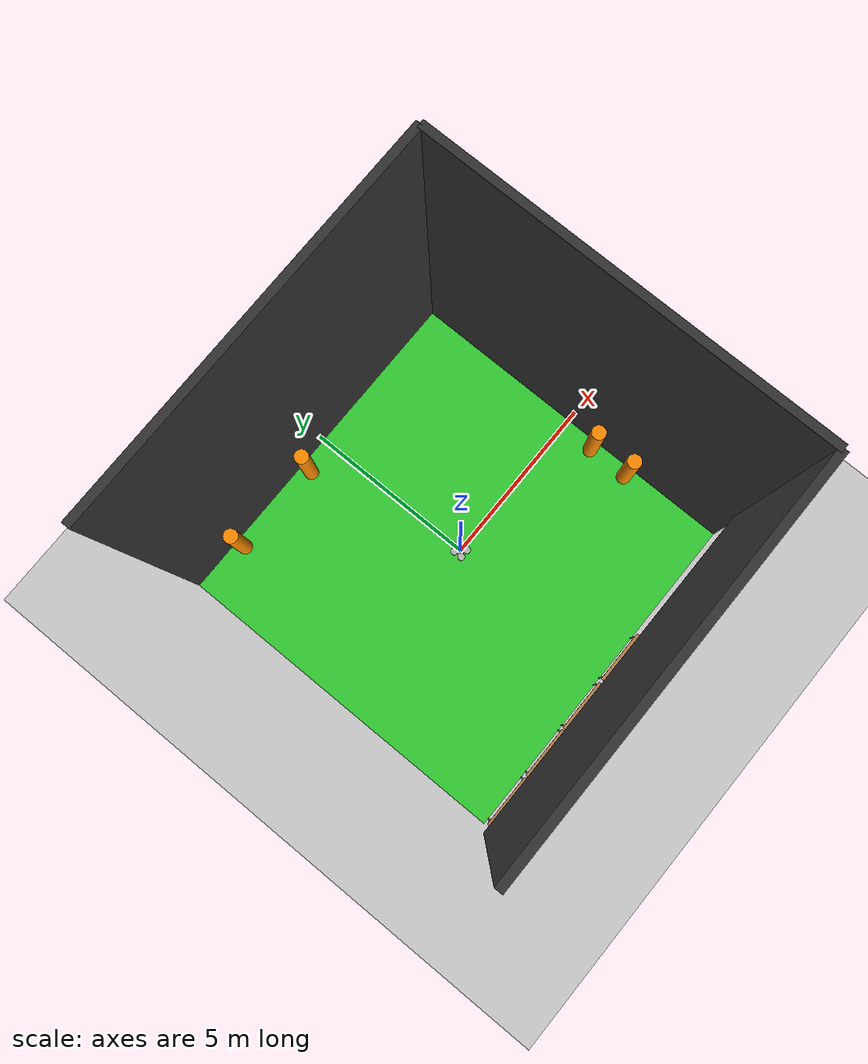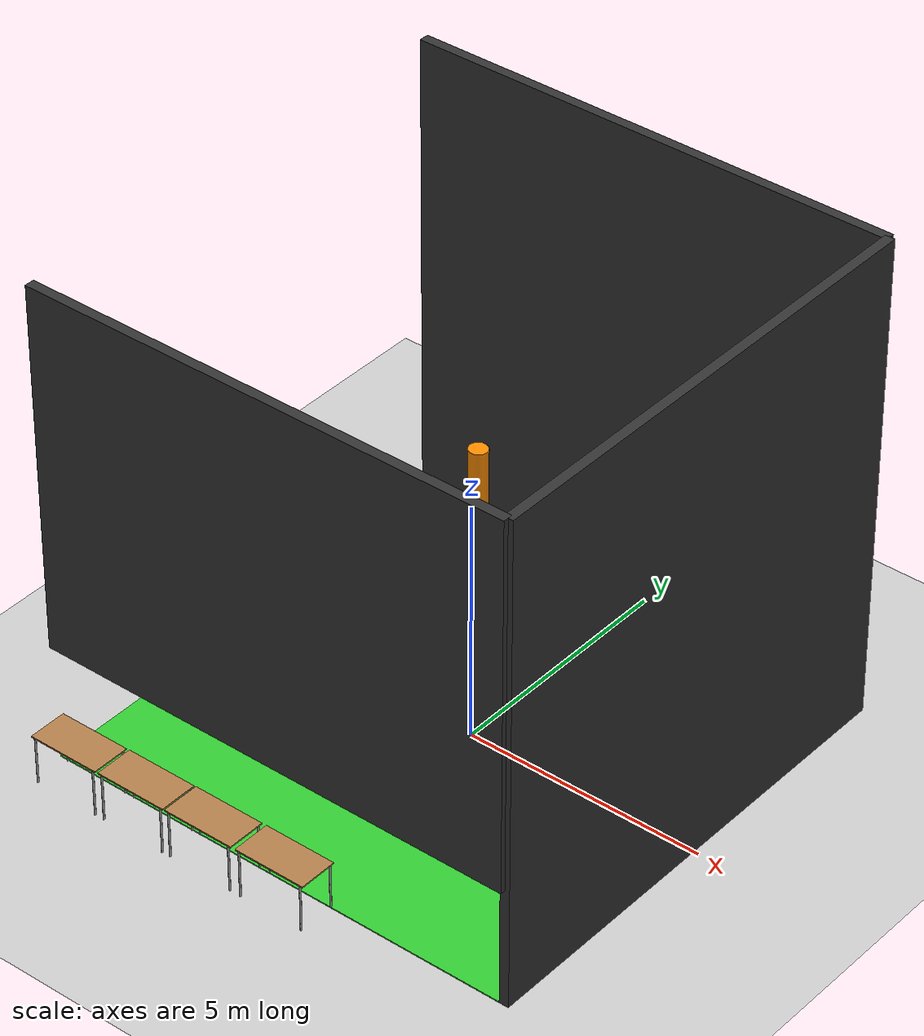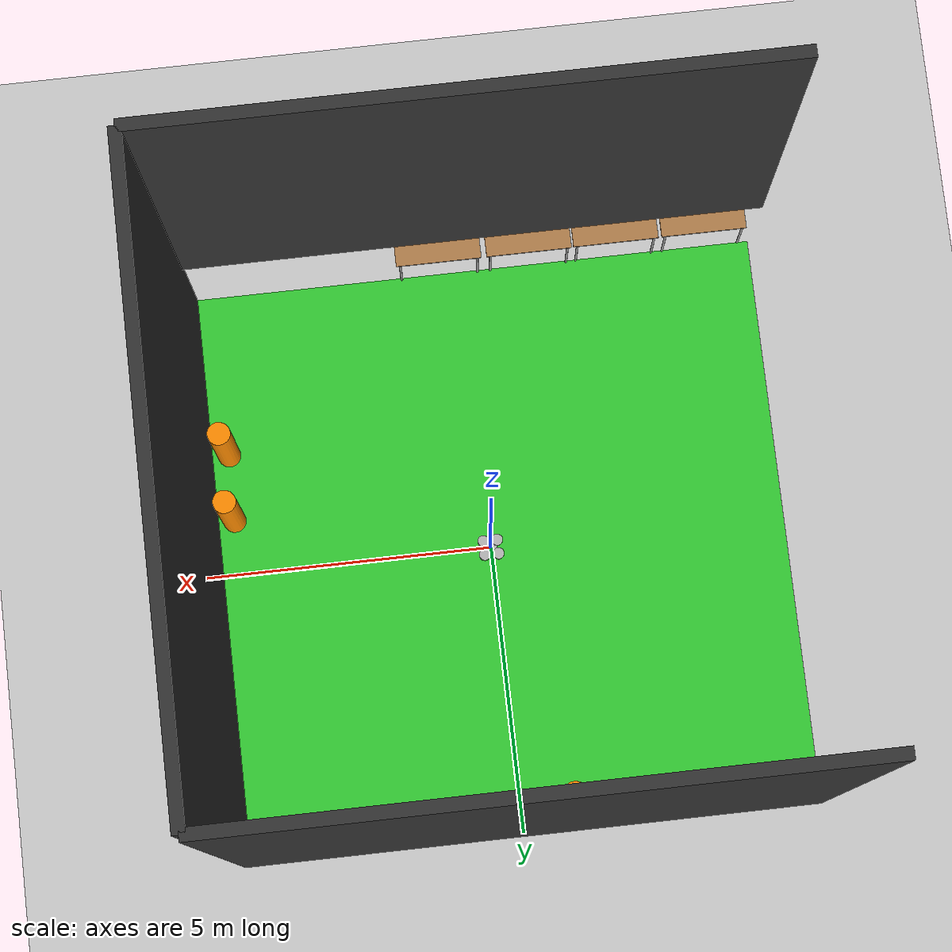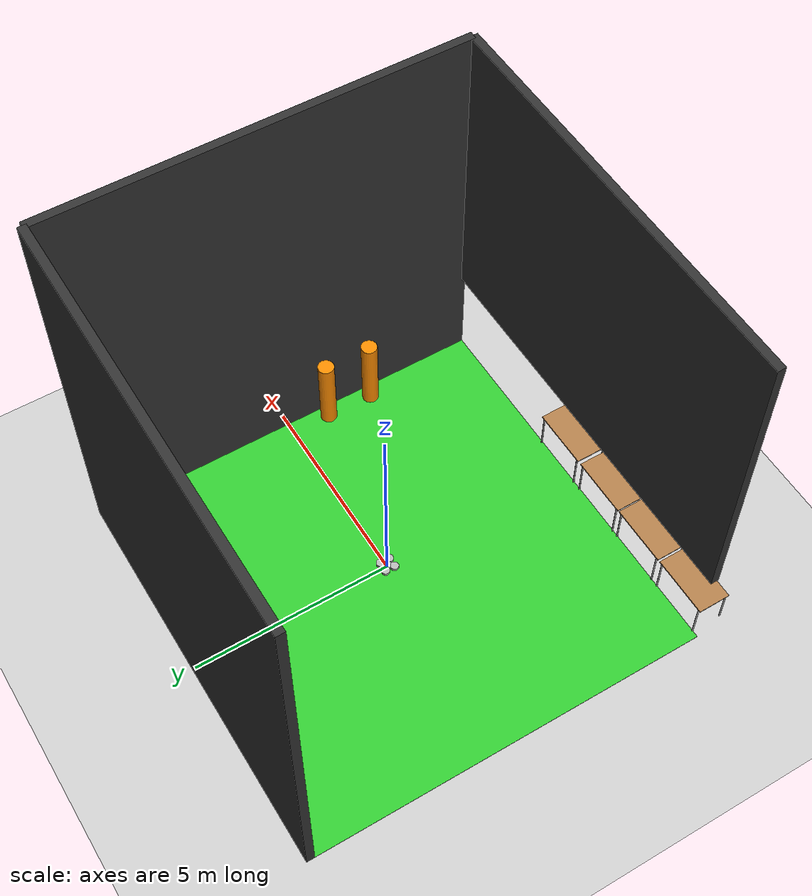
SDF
<sdf version="1.6">
 <world name="default">
  <light name="sun" type="directional">
   <cast_shadows>0</cast_shadows>
   <pose>0 0 10 0 -0 0</pose>
   <diffuse>0.8 0.8 0.8 1</diffuse>
   <specular>0.1 0.1 0.1 1</specular>
   <attenuation>
    <range>1000</range>
    <constant>0.9</constant>
    <linear>0.01</linear>
    <quadratic>0.001</quadratic>
   </attenuation>
   <direction>-0.5 0.5 -1</direction>
  </light>
  <include><uri>model://ardrone_omni</uri></include>
  <model name="ground_plane">
   <static>1</static>
   <link name="link">
    <collision name="collision">
     <geometry><plane><normal>0 0 1</normal><size>100 100</size></plane></geometry>
     <surface><friction><ode><mu>100</mu><mu2>50</mu2></ode></friction></surface>
    </collision>
    <visual name="visual">
     <cast_shadows>0</cast_shadows>
     <geometry><plane><normal>0 0 1</normal><size>100 100</size></plane></geometry>
     <material>
      <script><uri>file://media/materials/scripts/gazebo.material</uri><name>Gazebo/Grey</name></script>
     </material>
    </visual>
   </link>
  </model>
  <gravity>0 0 -9.8</gravity>
  <magnetic_field>6e-06 2.3e-05 -4.2e-05</magnetic_field>
  <atmosphere type="adiabatic"/>
  <physics name="default_physics" default="0" type="ode">
   <max_step_size>0.001</max_step_size>
   <real_time_factor>1</real_time_factor>
   <real_time_update_rate>1000</real_time_update_rate>
  </physics>
  <scene><ambient>0.4 0.4 0.4 1</ambient><background>0.7 0.7 0.7 1</background><shadows>1</shadows></scene>
  <spherical_coordinates>
   <surface_model>EARTH_WGS84</surface_model>
   <latitude_deg>0</latitude_deg>
   <longitude_deg>0</longitude_deg>
   <elevation>0</elevation>
   <heading_deg>150</heading_deg>
  </spherical_coordinates>
  <model name="table">
   <static>1</static>
   <link name="link">
    <collision name="surface">
     <pose>0 0 1 0 -0 0</pose>
     <geometry><box><size>1.5 0.8 0.03</size></box></geometry>
     <surface><friction><ode><mu>0.6</mu><mu2>0.6</mu2></ode></friction></surface>
    </collision>
    <visual name="visual1">
     <pose>0 0 1 0 -0 0</pose>
     <geometry><box><size>1.5 0.8 0.03</size></box></geometry>
     <material>
      <script><uri>file://media/materials/scripts/gazebo.material</uri><name>Gazebo/Wood</name></script>
     </material>
    </visual>
    <collision name="front_left_leg">
     <pose>0.68 0.38 0.5 0 -0 0</pose>
     <geometry><cylinder><radius>0.02</radius><length>1</length></cylinder></geometry>
    </collision>
    <visual name="front_left_leg">
     <pose>0.68 0.38 0.5 0 -0 0</pose>
     <geometry><cylinder><radius>0.02</radius><length>1</length></cylinder></geometry>
     <material>
      <script><uri>file://media/materials/scripts/gazebo.material</uri><name>Gazebo/Grey</name></script>
     </material>
    </visual>
    <collision name="front_right_leg">
     <pose>0.68 -0.38 0.5 0 -0 0</pose>
     <geometry><cylinder><radius>0.02</radius><length>1</length></cylinder></geometry>
    </collision>
    <visual name="front_right_leg">
     <pose>0.68 -0.38 0.5 0 -0 0</pose>
     <geometry><cylinder><radius>0.02</radius><length>1</length></cylinder></geometry>
     <material>
      <script><uri>file://media/materials/scripts/gazebo.material</uri><name>Gazebo/Grey</name></script>
     </material>
    </visual>
    <collision name="back_right_leg">
     <pose>-0.68 -0.38 0.5 0 -0 0</pose>
     <geometry><cylinder><radius>0.02</radius><length>1</length></cylinder></geometry>
    </collision>
    <visual name="back_right_leg">
     <pose>-0.68 -0.38 0.5 0 -0 0</pose>
     <geometry><cylinder><radius>0.02</radius><length>1</length></cylinder></geometry>
     <material>
      <script><uri>file://media/materials/scripts/gazebo.material</uri><name>Gazebo/Grey</name></script>
     </material>
    </visual>
    <collision name="back_left_leg">
     <pose>-0.68 0.38 0.5 0 -0 0</pose>
     <geometry><cylinder><radius>0.02</radius><length>1</length></cylinder></geometry>
    </collision>
    <visual name="back_left_leg">
     <pose>-0.68 0.38 0.5 0 -0 0</pose>
     <geometry><cylinder><radius>0.02</radius><length>1</length></cylinder></geometry>
     <material>
      <script><uri>file://media/materials/scripts/gazebo.material</uri><name>Gazebo/Grey</name></script>
     </material>
    </visual>
   </link>
   <pose>-4.32267 -5.41265 0 0 -0 0</pose>
  </model>
  <model name="table_0">
   <static>1</static>
   <link name="link">
    <collision name="surface">
     <pose>0 0 1 0 -0 0</pose>
     <geometry><box><size>1.5 0.8 0.03</size></box></geometry>
     <surface><friction><ode><mu>0.6</mu><mu2>0.6</mu2></ode></friction></surface>
    </collision>
    <visual name="visual1">
     <pose>0 0 1 0 -0 0</pose>
     <geometry><box><size>1.5 0.8 0.03</size></box></geometry>
     <material>
      <script><uri>file://media/materials/scripts/gazebo.material</uri><name>Gazebo/Wood</name></script>
     </material>
    </visual>
    <collision name="front_left_leg">
     <pose>0.68 0.38 0.5 0 -0 0</pose>
     <geometry><cylinder><radius>0.02</radius><length>1</length></cylinder></geometry>
    </collision>
    <visual name="front_left_leg">
     <pose>0.68 0.38 0.5 0 -0 0</pose>
     <geometry><cylinder><radius>0.02</radius><length>1</length></cylinder></geometry>
     <material>
      <script><uri>file://media/materials/scripts/gazebo.material</uri><name>Gazebo/Grey</name></script>
     </material>
    </visual>
    <collision name="front_right_leg">
     <pose>0.68 -0.38 0.5 0 -0 0</pose>
     <geometry><cylinder><radius>0.02</radius><length>1</length></cylinder></geometry>
    </collision>
    <visual name="front_right_leg">
     <pose>0.68 -0.38 0.5 0 -0 0</pose>
     <geometry><cylinder><radius>0.02</radius><length>1</length></cylinder></geometry>
     <material>
      <script><uri>file://media/materials/scripts/gazebo.material</uri><name>Gazebo/Grey</name></script>
     </material>
    </visual>
    <collision name="back_right_leg">
     <pose>-0.68 -0.38 0.5 0 -0 0</pose>
     <geometry><cylinder><radius>0.02</radius><length>1</length></cylinder></geometry>
    </collision>
    <visual name="back_right_leg">
     <pose>-0.68 -0.38 0.5 0 -0 0</pose>
     <geometry><cylinder><radius>0.02</radius><length>1</length></cylinder></geometry>
     <material>
      <script><uri>file://media/materials/scripts/gazebo.material</uri><name>Gazebo/Grey</name></script>
     </material>
    </visual>
    <collision name="back_left_leg">
     <pose>-0.68 0.38 0.5 0 -0 0</pose>
     <geometry><cylinder><radius>0.02</radius><length>1</length></cylinder></geometry>
    </collision>
    <visual name="back_left_leg">
     <pose>-0.68 0.38 0.5 0 -0 0</pose>
     <geometry><cylinder><radius>0.02</radius><length>1</length></cylinder></geometry>
     <material>
      <script><uri>file://media/materials/scripts/gazebo.material</uri><name>Gazebo/Grey</name></script>
     </material>
    </visual>
   </link>
   <pose>-2.76277 -5.40361 0 0 -0 0</pose>
  </model>
  <model name="table_1">
   <static>1</static>
   <link name="link">
    <collision name="surface">
     <pose>0 0 1 0 -0 0</pose>
     <geometry><box><size>1.5 0.8 0.03</size></box></geometry>
     <surface><friction><ode><mu>0.6</mu><mu2>0.6</mu2></ode></friction></surface>
    </collision>
    <visual name="visual1">
     <pose>0 0 1 0 -0 0</pose>
     <geometry><box><size>1.5 0.8 0.03</size></box></geometry>
     <material>
      <script><uri>file://media/materials/scripts/gazebo.material</uri><name>Gazebo/Wood</name></script>
     </material>
    </visual>
    <collision name="front_left_leg">
     <pose>0.68 0.38 0.5 0 -0 0</pose>
     <geometry><cylinder><radius>0.02</radius><length>1</length></cylinder></geometry>
    </collision>
    <visual name="front_left_leg">
     <pose>0.68 0.38 0.5 0 -0 0</pose>
     <geometry><cylinder><radius>0.02</radius><length>1</length></cylinder></geometry>
     <material>
      <script><uri>file://media/materials/scripts/gazebo.material</uri><name>Gazebo/Grey</name></script>
     </material>
    </visual>
    <collision name="front_right_leg">
     <pose>0.68 -0.38 0.5 0 -0 0</pose>
     <geometry><cylinder><radius>0.02</radius><length>1</length></cylinder></geometry>
    </collision>
    <visual name="front_right_leg">
     <pose>0.68 -0.38 0.5 0 -0 0</pose>
     <geometry><cylinder><radius>0.02</radius><length>1</length></cylinder></geometry>
     <material>
      <script><uri>file://media/materials/scripts/gazebo.material</uri><name>Gazebo/Grey</name></script>
     </material>
    </visual>
    <collision name="back_right_leg">
     <pose>-0.68 -0.38 0.5 0 -0 0</pose>
     <geometry><cylinder><radius>0.02</radius><length>1</length></cylinder></geometry>
    </collision>
    <visual name="back_right_leg">
     <pose>-0.68 -0.38 0.5 0 -0 0</pose>
     <geometry><cylinder><radius>0.02</radius><length>1</length></cylinder></geometry>
     <material>
      <script><uri>file://media/materials/scripts/gazebo.material</uri><name>Gazebo/Grey</name></script>
     </material>
    </visual>
    <collision name="back_left_leg">
     <pose>-0.68 0.38 0.5 0 -0 0</pose>
     <geometry><cylinder><radius>0.02</radius><length>1</length></cylinder></geometry>
    </collision>
    <visual name="back_left_leg">
     <pose>-0.68 0.38 0.5 0 -0 0</pose>
     <geometry><cylinder><radius>0.02</radius><length>1</length></cylinder></geometry>
     <material>
      <script><uri>file://media/materials/scripts/gazebo.material</uri><name>Gazebo/Grey</name></script>
     </material>
    </visual>
   </link>
   <pose>-1.22632 -5.39461 0 0 -0 0</pose>
  </model>
  <model name="table_2">
   <static>1</static>
   <link name="link">
    <collision name="surface">
     <pose>0 0 1 0 -0 0</pose>
     <geometry><box><size>1.5 0.8 0.03</size></box></geometry>
     <surface><friction><ode><mu>0.6</mu><mu2>0.6</mu2></ode></friction></surface>
    </collision>
    <visual name="visual1">
     <pose>0 0 1 0 -0 0</pose>
     <geometry><box><size>1.5 0.8 0.03</size></box></geometry>
     <material>
      <script><uri>file://media/materials/scripts/gazebo.material</uri><name>Gazebo/Wood</name></script>
     </material>
    </visual>
    <collision name="front_left_leg">
     <pose>0.68 0.38 0.5 0 -0 0</pose>
     <geometry><cylinder><radius>0.02</radius><length>1</length></cylinder></geometry>
    </collision>
    <visual name="front_left_leg">
     <pose>0.68 0.38 0.5 0 -0 0</pose>
     <geometry><cylinder><radius>0.02</radius><length>1</length></cylinder></geometry>
     <material>
      <script><uri>file://media/materials/scripts/gazebo.material</uri><name>Gazebo/Grey</name></script>
     </material>
    </visual>
    <collision name="front_right_leg">
     <pose>0.68 -0.38 0.5 0 -0 0</pose>
     <geometry><cylinder><radius>0.02</radius><length>1</length></cylinder></geometry>
    </collision>
    <visual name="front_right_leg">
     <pose>0.68 -0.38 0.5 0 -0 0</pose>
     <geometry><cylinder><radius>0.02</radius><length>1</length></cylinder></geometry>
     <material>
      <script><uri>file://media/materials/scripts/gazebo.material</uri><name>Gazebo/Grey</name></script>
     </material>
    </visual>
    <collision name="back_right_leg">
     <pose>-0.68 -0.38 0.5 0 -0 0</pose>
     <geometry><cylinder><radius>0.02</radius><length>1</length></cylinder></geometry>
    </collision>
    <visual name="back_right_leg">
     <pose>-0.68 -0.38 0.5 0 -0 0</pose>
     <geometry><cylinder><radius>0.02</radius><length>1</length></cylinder></geometry>
     <material>
      <script><uri>file://media/materials/scripts/gazebo.material</uri><name>Gazebo/Grey</name></script>
     </material>
    </visual>
    <collision name="back_left_leg">
     <pose>-0.68 0.38 0.5 0 -0 0</pose>
     <geometry><cylinder><radius>0.02</radius><length>1</length></cylinder></geometry>
    </collision>
    <visual name="back_left_leg">
     <pose>-0.68 0.38 0.5 0 -0 0</pose>
     <geometry><cylinder><radius>0.02</radius><length>1</length></cylinder></geometry>
     <material>
      <script><uri>file://media/materials/scripts/gazebo.material</uri><name>Gazebo/Grey</name></script>
     </material>
    </visual>
   </link>
   <pose>0.369055 -5.38977 0 0 -0 0</pose>
  </model>
  <model name="orange_pole">
   <pose>-3.60609 4.59513 1 0 -0 0</pose>
   <static>1</static>
   <link name="link">
    <inertial>
     <mass>1</mass>
     <inertia><ixx>0.083</ixx><ixy>0</ixy><ixz>0</ixz><iyy>0.083</iyy><iyz>0</iyz><izz>0.083</izz></inertia>
    </inertial>
    <collision name="collision">
     <geometry><cylinder><radius>0.3</radius><length>2</length></cylinder></geometry>
    </collision>
    <visual name="visual">
     <geometry><cylinder><radius>0.2</radius><length>2</length></cylinder></geometry>
     <material>
      <ambient>1 0.55 0 1</ambient>
      <diffuse>1 0.55 0 1</diffuse>
      <specular>0.1 0.1 0.1 1</specular>
      <emissive>0 0 0 0</emissive>
     </material>
    </visual>
   </link>
  </model>
  <model name="orange_pole_0">
   <pose>-0.897962 4.54077 1 0 -0 0</pose>
   <static>1</static>
   <link name="link">
    <inertial>
     <mass>1</mass>
     <inertia><ixx>0.083</ixx><ixy>0</ixy><ixz>0</ixz><iyy>0.083</iyy><iyz>0</iyz><izz>0.083</izz></inertia>
    </inertial>
    <collision name="collision">
     <geometry><cylinder><radius>0.3</radius><length>2</length></cylinder></geometry>
    </collision>
    <visual name="visual">
     <geometry><cylinder><radius>0.2</radius><length>2</length></cylinder></geometry>
     <material>
      <ambient>1 0.55 0 1</ambient>
      <diffuse>1 0.55 0 1</diffuse>
      <specular>0.1 0.1 0.1 1</specular>
      <emissive>0 0 0 0</emissive>
     </material>
    </visual>
   </link>
  </model>
  <model name="orange_pole_1">
   <pose>4.41201 -2.15118 1 0 -0 0</pose>
   <static>1</static>
   <link name="link">
    <inertial>
     <mass>1</mass>
     <inertia><ixx>0.083</ixx><ixy>0</ixy><ixz>0</ixz><iyy>0.083</iyy><iyz>0</iyz><izz>0.083</izz></inertia>
    </inertial>
    <collision name="collision">
     <geometry><cylinder><radius>0.3</radius><length>2</length></cylinder></geometry>
    </collision>
    <visual name="visual">
     <geometry><cylinder><radius>0.2</radius><length>2</length></cylinder></geometry>
     <material>
      <ambient>1 0.55 0 1</ambient>
      <diffuse>1 0.55 0 1</diffuse>
      <specular>0.1 0.1 0.1 1</specular>
      <emissive>0 0 0 0</emissive>
     </material>
    </visual>
   </link>
  </model>
  <model name="orange_pole_2">
   <pose>4.42776 -0.974296 1 0 -0 0</pose>
   <static>1</static>
   <link name="link">
    <inertial>
     <mass>1</mass>
     <inertia><ixx>0.083</ixx><ixy>0</ixy><ixz>0</ixz><iyy>0.083</iyy><iyz>0</iyz><izz>0.083</izz></inertia>
    </inertial>
    <collision name="collision">
     <geometry><cylinder><radius>0.3</radius><length>2</length></cylinder></geometry>
    </collision>
    <visual name="visual">
     <geometry><cylinder><radius>0.2</radius><length>2</length></cylinder></geometry>
     <material>
      <ambient>1 0.55 0 1</ambient>
      <diffuse>1 0.55 0 1</diffuse>
      <specular>0.1 0.1 0.1 1</specular>
      <emissive>0 0 0 0</emissive>
     </material>
    </visual>
   </link>
  </model>
  <model name="cyberzoo">
   <static>1</static>
   <pose>-0.184743 -0.031412 0 0 -0 0</pose>
   <link name="floor">
    <pose>0 0 0.01 0 -0 0</pose>
    <visual name="visual">
     <geometry><box><size>10 10 0.02</size></box></geometry>
     <material>
      <ambient>0 0 0 1</ambient>
      <diffuse>0.2 0.8 0.2 1</diffuse>
      <specular>0.2 0.2 0.2 1</specular>
      <emissive>0 0 0 0</emissive>
     </material>
    </visual>
    <collision name="collision"><geometry><box><size>10 10 0.02</size></box></geometry></collision>
   </link>
   <link name="north_wall">
    <pose>0 5 5 0 -0 0</pose>
    <visual name="visual">
     <geometry><box><size>10 0.2 10</size></box></geometry>
     <material>
      <ambient>0 0 0 1</ambient>
      <diffuse>0.2 0.2 0.2 1</diffuse>
      <specular>0 0 0 1</specular>
      <emissive>0 0 0 0</emissive>
     </material>
    </visual>
    <collision name="collision"><geometry><box><size>10 0.2 10</size></box></geometry></collision>
   </link>
   <link name="east_wall">
    <pose>5 0 5 0 -0 0</pose>
    <visual name="visual">
     <geometry><box><size>0.2 10 10</size></box></geometry>
     <material>
      <ambient>0 0 0 1</ambient>
      <diffuse>0.2 0.2 0.2 1</diffuse>
      <specular>0 0 0 1</specular>
      <emissive>0 0 0 0</emissive>
     </material>
    </visual>
    <collision name="collision"><geometry><box><size>0.2 10 10</size></box></geometry></collision>
   </link>
   <link name="south_wall">
    <pose>0 -5 6.25 0 -0 0</pose>
    <visual name="visual">
     <geometry><box><size>10 0.2 7.5</size></box></geometry>
     <material>
      <ambient>0 0 0 1</ambient>
      <diffuse>0.2 0.2 0.2 1</diffuse>
      <specular>0 0 0 1</specular>
      <emissive>0 0 0 0</emissive>
     </material>
    </visual>
    <collision name="collision"><geometry><box><size>10 0.2 7.5</size></box></geometry></collision>
   </link>
  </model>
 </world>
</sdf>

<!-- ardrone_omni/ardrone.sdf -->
<sdf version='1.4'>
	<model name="paparazzi_uav">
		<pose>0 0 .1 0 0 0</pose>

		<link name="chassis">
			<velocity_decay>
				<linear>0.001</linear>
			</velocity_decay>
			<inertial><!-- Taken from Paparazzi's ARDrone model for JSBsim -->
				<mass>0.4</mass>
				<inertia>
					<ixx> 0.005 </ixx>
					<iyy> 0.005 </iyy>
					<izz> 0.010 </izz>
					<ixy> 0. </ixy>
					<ixz> 0. </ixz>
					<iyz> 0. </iyz>
				</inertia>
			</inertial>

			<collision name="collision">
				<geometry>
					<box>
						<size>.4 .4 .05</size>
					</box>
				</geometry>
			</collision>

			<visual name="visual">
				<geometry>
					<box>
						<size>.2 .2 .05</size>
					</box>
				</geometry>
			</visual>

			<sensor name="contactsensor" type="contact">
				<contact>
					<collision>collision</collision>
				</contact>
			</sensor>
		</link>

		<link name="bottom_camera">
			<pose>0 0 -.06 0 1.57 3.1415</pose>
			<inertial>
				<mass>0.001</mass>
				<inertia>
					<ixx>.0001</ixx>
					<iyy>.0001</iyy>
					<izz>.0001</izz>
					<ixy>0</ixy>
					<iyz>0</iyz>
					<ixz>0</ixz>
				</inertia>
			</inertial>
			<sensor name="camera" type="wideanglecamera">
				<update_rate>30</update_rate>
				<camera>
					<horizontal_fov>6.2831</horizontal_fov>
					<image>
						<width>240</width>
						<height>240</height>
					</image>
					<clip>
						<near>0.01</near>
						<far>100</far>
					</clip>
					<lens>
						<type>custom</type>
						<custom_function>
							<c1>1.0</c1>
							<c2>4</c2>
							<f>1.0</f>
							<fun>id</fun>
						</custom_function>
						<scale_to_hfov>true</scale_to_hfov>
						<cutoff_angle>3.1415</cutoff_angle>
						<env_texture_size>64</env_texture_size>
					</lens>
					<noise>
						<type>gaussian</type>
						<!-- Noise is sampled independently per pixel on each frame. That pixel's
							noise value is added to each of its color channels, which at that point lie
							in the range [0,1]. -->
						<mean>0.0</mean>
						<stddev>0.007</stddev>
					</noise>
				</camera>
			</sensor>
		</link>

		<joint name="bottom_camera_joint" type="fixed">
			<parent>chassis</parent>
			<child>bottom_camera</child>
		</joint>

		<link name="nw_motor">
			<pose>0.12 0.12 0 0 0 0</pose>
			<inertial>
				<mass>0.01</mass>
				<inertia>
					<ixx>.0001</ixx>
					<iyy>.0001</iyy>
					<izz>.0001</izz>
					<ixy>0</ixy>
					<iyz>0</iyz>
					<ixz>0</ixz>
				</inertia>
			</inertial>
			<visual name="visual">
				<geometry>
					<cylinder>
						<radius>0.10</radius>
						<length>.07</length>
					</cylinder>
				</geometry>
			</visual>
		</link>

		<joint type="fixed" name="nw_motor_joint">
			<parent>chassis</parent>
			<child>nw_motor</child>
		</joint>

		<link name="se_motor">
			<pose>-0.12 -0.12 0 0 0 0</pose>
			<inertial>
				<mass>0.01</mass>
				<inertia>
					<ixx>.0001</ixx>
					<iyy>.0001</iyy>
					<izz>.0001</izz>
					<ixy>0</ixy>
					<iyz>0</iyz>
					<ixz>0</ixz>
				</inertia>
			</inertial>
			<visual name="visual">
				<geometry>
					<cylinder>
						<radius>0.10</radius>
						<length>.07</length>
					</cylinder>
				</geometry>
			</visual>
		</link>

		<joint type="fixed" name="se_motor_joint">
			<parent>chassis</parent>
			<child>se_motor</child>
		</joint>

		<link name="ne_motor">
			<pose>0.12 -0.12 0 0 0 0</pose>
			<inertial>
				<mass>0.01</mass>
				<inertia>
					<ixx>.0001</ixx>
					<iyy>.0001</iyy>
					<izz>.0001</izz>
					<ixy>0</ixy>
					<iyz>0</iyz>
					<ixz>0</ixz>
				</inertia>
			</inertial>
			<visual name="visual">
				<geometry>
					<cylinder>
						<radius>0.10</radius>
						<length>.07</length>
					</cylinder>
				</geometry>
			</visual>
		</link>

		<joint type="fixed" name="ne_motor_joint">
			<parent>chassis</parent>
			<child>ne_motor</child>
		</joint>

		<link name="sw_motor">
			<pose>-0.12 0.12 0 0 0 0</pose>
			<inertial>
				<mass>0.01</mass>
				<inertia>
					<ixx>.0001</ixx>
					<iyy>.0001</iyy>
					<izz>.0001</izz>
					<ixy>0</ixy>
					<iyz>0</iyz>
					<ixz>0</ixz>
				</inertia>
			</inertial>
			<visual name="visual">
				<geometry>
					<cylinder>
						<radius>0.10</radius>
						<length>.07</length>
					</cylinder>
				</geometry>
			</visual>
		</link>

		<joint type="fixed" name="sw_motor_joint">
			<parent>chassis</parent>
			<child>sw_motor</child>
		</joint>
	</model>
</sdf>
